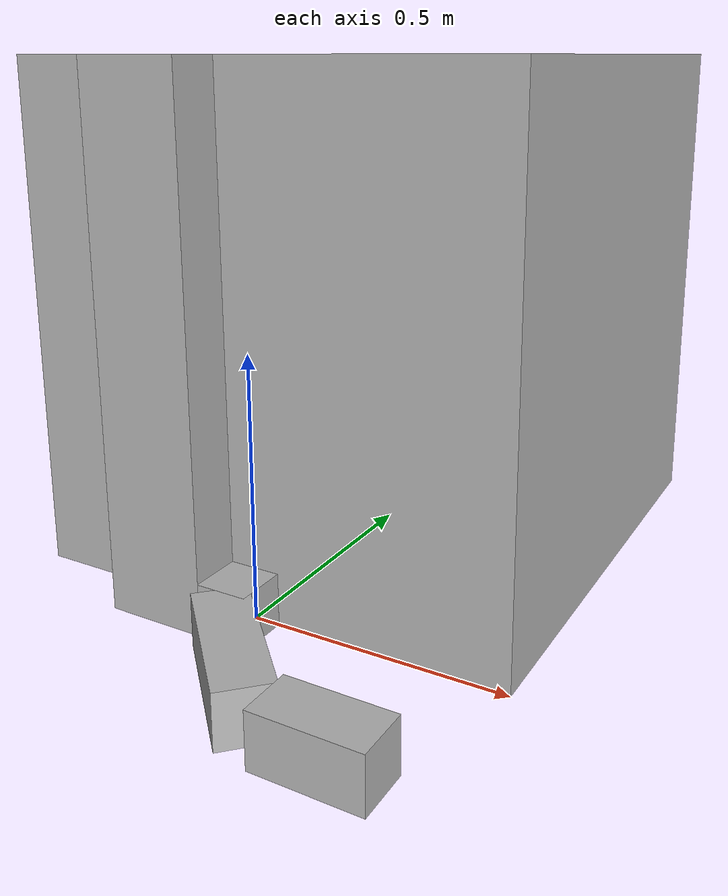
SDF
<?xml version="1.0" ?>
<sdf version="1.4">
  <world name="default">
    <include>
      <uri>model://sun</uri>
    </include>

    <model name="my_model">
      <pose>0 0.5 0.5 0 0 0</pose>
      <static>false</static>
      <link name="link">
        <inertial>
          <mass>1.0</mass>
          <inertia> <!-- interias are tricky to compute -->
            <!-- http://answers.gazebosim.org/question/4372/the-inertia-matrix-explained/ -->
            <ixx>0.083</ixx>       <!-- for a box: ixx = 0.083 * mass * (y*y + z*z) -->
            <ixy>0.0</ixy>         <!-- for a box: ixy = 0 -->
            <ixz>0.0</ixz>         <!-- for a box: ixz = 0 -->
            <iyy>0.083</iyy>       <!-- for a box: iyy = 0.083 * mass * (x*x + z*z) -->
            <iyz>0.0</iyz>         <!-- for a box: iyz = 0 -->
            <izz>0.083</izz>       <!-- for a box: izz = 0.083 * mass * (x*x + y*y) -->
          </inertia>
        </inertial>
        <collision name="collision">
          <geometry>
            <box>
              <size>1 1 1</size>
            </box>
          </geometry>
        </collision>
        <visual name="visual">
          <geometry>
            <box>
              <size>1 1 1</size>
            </box>
          </geometry>
        </visual>
      </link>
    </model>

    <model name="simple_gripper">
            <link name="riser">
                <pose>-0.15 0.0 0.5 0 0 0</pose>
                <inertial>
                    <pose>0 0 -0.5 0 0 0</pose>
                    <inertia>
                        <ixx>0.01</ixx>
                        <ixy>0</ixy>
                        <ixz>0</ixz>
                        <iyy>0.01</iyy>
                        <iyz>0</iyz>
                        <izz>0.01</izz>
                    </inertia>
                    <mass>10.0</mass>
                </inertial>
                <collision name="collision">
                    <geometry>
                        <box>
                            <size>0.2 0.2 1.0</size>
                        </box>
                    </geometry>
                </collision>
                <visual name="visual">
                    <geometry>
                        <box>
                            <size>0.2 0.2 1.0</size>
                        </box>
                    </geometry>
                    <material>
                        <script>Gazebo/Purple</script>
                    </material>
                </visual>
            </link>
            <link name="palm">
                <pose>0.0 0.0 0.05 0 0 0</pose>
                <inertial>
                    <inertia>
                        <ixx>0.01</ixx>
                        <ixy>0</ixy>
                        <ixz>0</ixz>
                        <iyy>0.01</iyy>
                        <iyz>0</iyz>
                        <izz>0.01</izz>
                    </inertia>
                    <mass>0.5</mass>
                </inertial>
                <collision name="collision">
                    <geometry>
                        <box>
                            <size>0.1 0.2 0.1</size>
                        </box>
                    </geometry>
                </collision>
                <visual name="visual">
                    <geometry>
                        <box>
                            <size>0.1 0.2 0.1</size>
                        </box>
                    </geometry>
                    <material>
                        <script>Gazebo/Red</script>
                    </material>
                </visual>
            </link>
            <link name="left_finger">
                <pose>0.1 0.2 0.05 0 0 -0.78539</pose>
                <inertial>
                    <inertia>
                        <ixx>0.01</ixx>
                        <ixy>0</ixy>
                        <ixz>0</ixz>
                        <iyy>0.01</iyy>
                        <iyz>0</iyz>
                        <izz>0.01</izz>
                    </inertia>
                    <mass>0.1</mass>
                </inertial>
                <collision name="collision">
                    <geometry>
                        <box>
                            <size>0.1 0.3 0.1</size>
                        </box>
                    </geometry>
                </collision>
                <visual name="visual">
                    <geometry>
                        <box>
                            <size>0.1 0.3 0.1</size>
                        </box>
                    </geometry>
                    <material>
                        <script>Gazebo/Blue</script>
                    </material>
                </visual>
            </link>
            <link name="left_finger_tip">
                <pose>0.336 0.3 0.05 0 0 1.5707</pose>
                <inertial>
                    <inertia>
                        <ixx>0.01</ixx>
                        <ixy>0</ixy>
                        <ixz>0</ixz>
                        <iyy>0.01</iyy>
                        <iyz>0</iyz>
                        <izz>0.01</izz>
                    </inertia>
                    <mass>0.1</mass>
                </inertial>
                <collision name="collision">
                    <geometry>
                        <box>
                            <size>0.1 0.2 0.1</size>
                        </box>
                    </geometry>
                </collision>
                <visual name="visual">
                    <geometry>
                        <box>
                            <size>0.1 0.2 0.1</size>
                        </box>
                    </geometry>
                    <material>
                        <script>Gazebo/Blue</script>
                    </material>
                </visual>
            </link>
            <link name="right_finger">
                <pose>0.1 -0.2 0.05 0 0 .78539</pose>
                <inertial>
                    <inertia>
                        <ixx>0.01</ixx>
                        <ixy>0</ixy>
                        <ixz>0</ixz>
                        <iyy>0.01</iyy>
                        <iyz>0</iyz>
                        <izz>0.01</izz>
                    </inertia>
                    <mass>0.1</mass>
                </inertial>
                <collision name="collision">
                    <geometry>
                        <box>
                            <size>0.1 0.3 0.1</size>
                        </box>
                    </geometry>
                </collision>
                <visual name="visual">
                    <geometry>
                        <box>
                            <size>0.1 0.3 0.1</size>
                        </box>
                    </geometry>
                    <material>
                        <script>Gazebo/Green</script>
                    </material>
                </visual>
            </link>
            <link name="right_finger_tip">
                <pose>0.336 -0.3 0.05 0 0 1.5707</pose>
                <inertial>
                    <inertia>
                        <ixx>0.01</ixx>
                        <ixy>0</ixy>
                        <ixz>0</ixz>
                        <iyy>0.01</iyy>
                        <iyz>0</iyz>
                        <izz>0.01</izz>
                    </inertia>
                    <mass>0.1</mass>
                </inertial>
                <collision name="collision">
                    <geometry>
                        <box>
                            <size>0.1 0.2 0.1</size>
                        </box>
                    </geometry>
                </collision>
                <visual name="visual">
                    <geometry>
                        <box>
                            <size>0.1 0.2 0.1</size>
                        </box>
                    </geometry>
                    <material>
                        <script>Gazebo/Green</script>
                    </material>
                </visual>
            </link>
            <static>true</static>

            <joint name="palm_left_finger" type="revolute">
                <pose>0 -0.15 0 0 0 0</pose>
                <child>left_finger</child>
                <parent>palm</parent>
                <axis>
                    <limit>
                        <lower>-0.4</lower>
                        <upper>0.4</upper>
                    </limit>
                    <xyz>0 0 1</xyz>
                </axis>
            </joint>
            <joint name="left_finger_tip" type="revolute">
                <pose>0 0.1 0 0 0 0</pose>
                <child>left_finger_tip</child>
                <parent>left_finger</parent>
                <axis>
                    <limit>
                        <lower>-0.4</lower>
                        <upper>0.4</upper>
                    </limit>
                    <xyz>0 0 1</xyz>
                </axis>
            </joint>
            <joint name="palm_right_finger" type="revolute">
                <pose>0 0.15 0 0 0 0</pose>
                <child>right_finger</child>
                <parent>palm</parent>
                <axis>
                    <limit>
                        <lower>-0.4</lower>
                        <upper>0.4</upper>
                    </limit>
                    <xyz>0 0 1</xyz>
                </axis>
            </joint>
            <joint name="right_finger_tip" type="revolute">
                <pose>0 0.1 0 0 0 0</pose>
                <child>right_finger_tip</child>
                <parent>right_finger</parent>
                <axis>
                    <limit>
                        <lower>-0.4</lower>
                        <upper>0.4</upper>
                    </limit>
                    <xyz>0 0 1</xyz>
                </axis>
            </joint>
            <joint name="palm_riser" type="prismatic">
                <child>palm</child>
                <parent>riser</parent>
                <axis>
                    <limit>
                        <lower>0</lower>
                        <upper>0.9</upper>
                    </limit>
                    <xyz>0 0 1</xyz>
                </axis>
            </joint>
    </model>
  </world>
</sdf>
